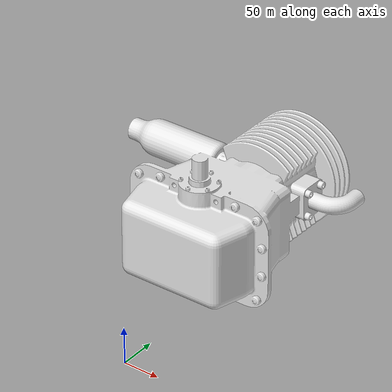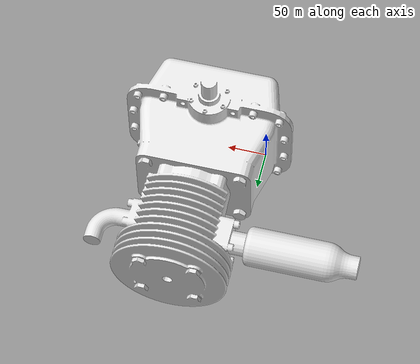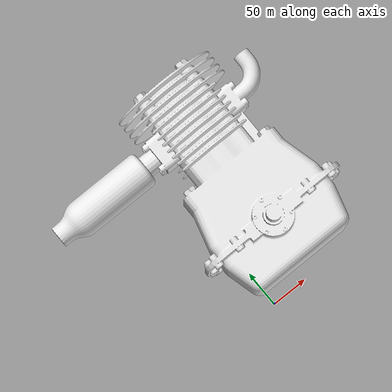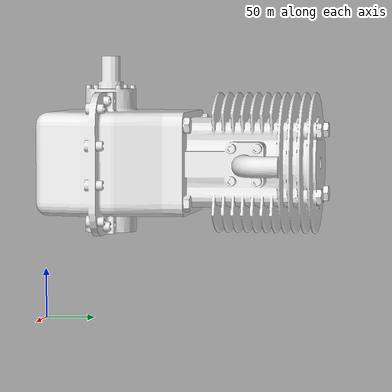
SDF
<sdf version="1.6">
    <model name="engine">
        <allow_auto_disable>true</allow_auto_disable>
        <link name="link">
            <kinematic>true</kinematic>
            <pose>0 0 0.08 0 0 0 0</pose>
            <inertial>
                <pose>0 0 -0.08 0 0 0 0</pose>
                <inertia>
                    <ixx>0.03541666666666667</ixx>
                    <ixy>0</ixy>
                    <ixz>0</ixz>
                    <iyy>0.04166666666666667</iyy>
                    <iyz>0</iyz>
                    <izz>0.010416666666666668</izz>
                </inertia>
                <mass>10.0</mass>
            </inertial>
            <visual name="visual">
                <geometry>
                    <mesh>
                        <uri>file://engine/engine.dae</uri>
                    </mesh>
                </geometry>
                <material>
                    <ambient>0.9 0.9 0.9 1.0</ambient>
                    <diffuse>0.9 0.9 0.9 1.0</diffuse>
                </material>
            </visual>
            <collision name="collision">
                <geometry>
                    <mesh>
                        <uri>file://engine/engine.dae</uri>
                    </mesh>
                </geometry>
                <surface>
                    <friction>
                        <ode>
                            <mu>1.0</mu>
                            <mu2>1.0</mu2>
                        </ode>
                    </friction>
                    <contact>
                        <ode>
                            <kp>1e15</kp>
                            <kd>1e12</kd>
                        </ode>
                    </contact>
                </surface>
            </collision>
        </link>
    </model>
</sdf>
